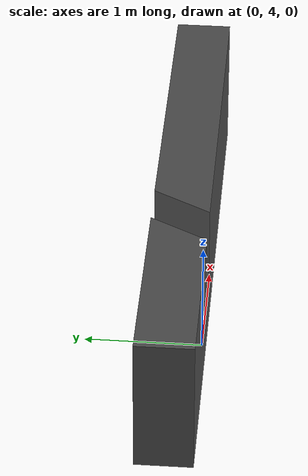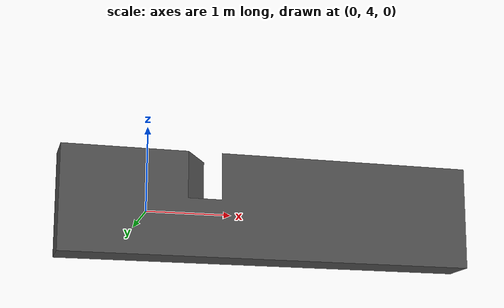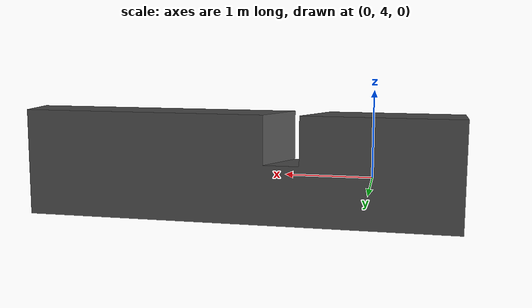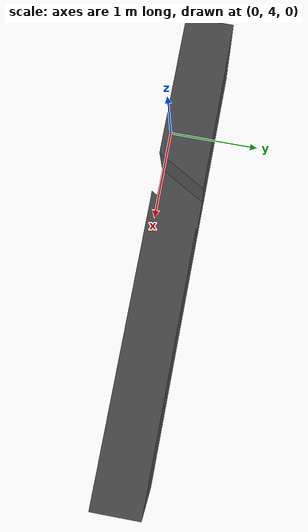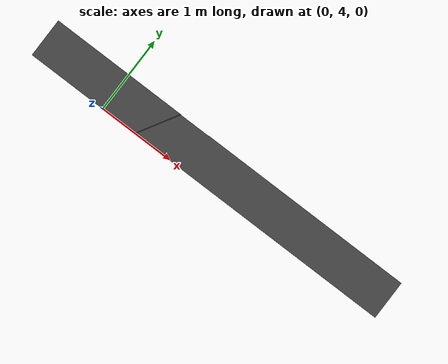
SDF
<?xml version="1.0" encoding="UTF-8"?>
<sdf version='1.9'>

  <!-- in version 2, only changed moment of inertias and masses and propellers xy locations, rest things have been kept same as version 1-->

  <model name='folding_drone_single_wall_differnt_obstacles'>
    <static>true</static>
    <link name="wall">
      <visual name="wall_visual">
        <pose>-1 2 -0.5 0 0 0</pose>
        <geometry>
          <mesh>
            <scale>0.001 0.001 0.001</scale>

            <uri>model://folding_drone_single_wall_differnt_obstacles/meshes/v2_gap_slope_horizontal.STL</uri>
          </mesh>
        </geometry>
        <material>
          <ambient>0.3 0.3 0.3 1</ambient>
          <diffuse>0.3 0.3 0.3 1</diffuse>
        </material>
      </visual>
            <uri>model://folding_drone_single_wall_differnt_obstacles/meshes/2_gap_slope_horizontal.STL</uri>
    </link>
  </model>
</sdf>
